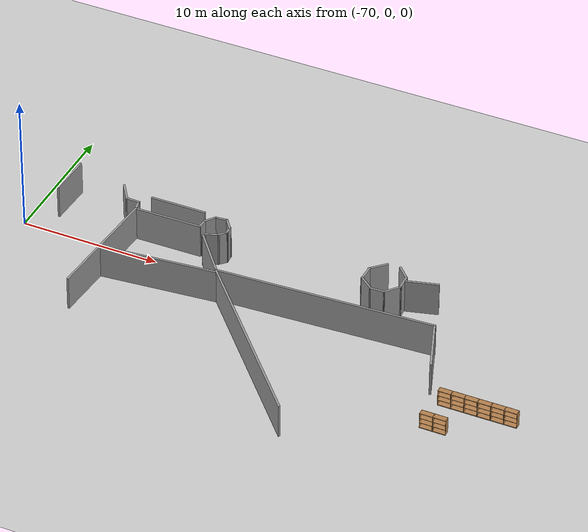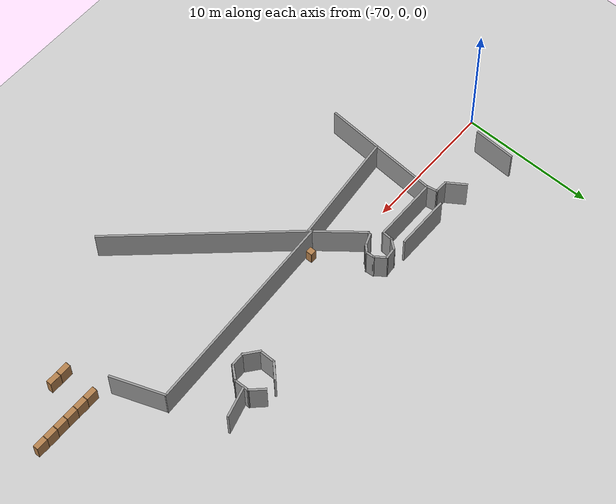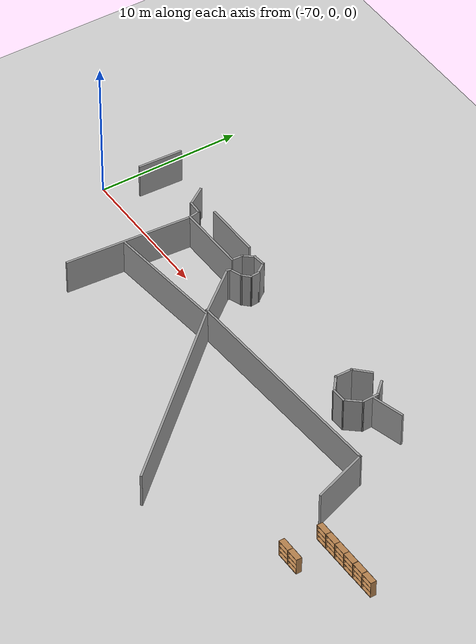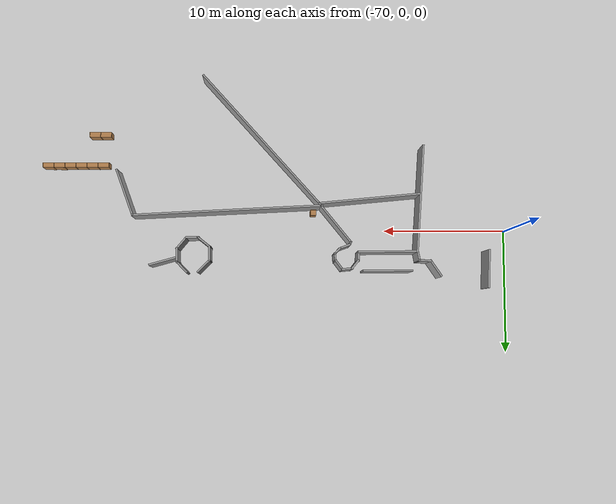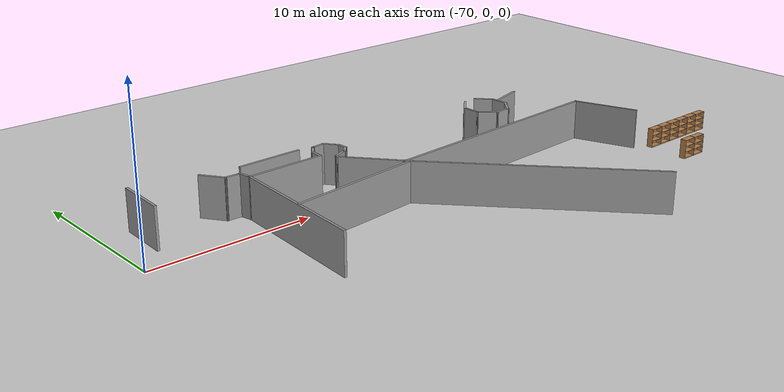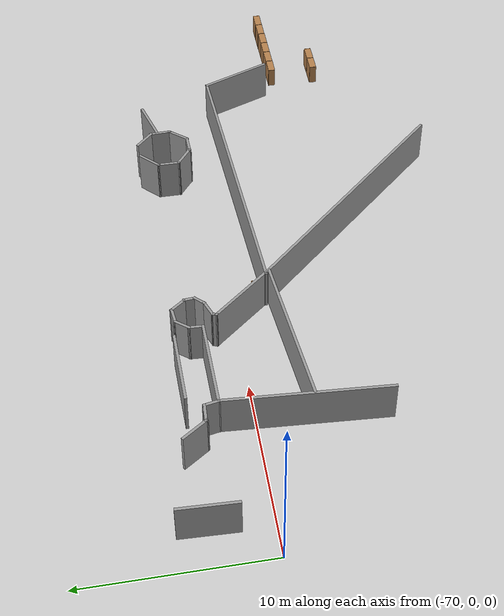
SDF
<sdf version="1.6">
 <world name="default">
  <model name="ground_plane">
   <static>1</static>
   <link name="link">
    <collision name="collision">
     <geometry><plane><normal>0 0 1</normal><size>100 100</size></plane></geometry>
     <surface><friction><ode><mu>100</mu><mu2>50</mu2></ode></friction></surface>
    </collision>
    <visual name="visual">
     <cast_shadows>0</cast_shadows>
     <geometry><plane><normal>0 0 1</normal><size>100 100</size></plane></geometry>
     <material>
      <script><uri>file://media/materials/scripts/gazebo.material</uri><name>Gazebo/Grey</name></script>
     </material>
    </visual>
   </link>
  </model>
  <model name="mall_new_reduce_size">
   <pose>-6.8092 7.5529 0 0 -0 0</pose>
   <link name="Wall_315">
    <collision name="Wall_315_Collision">
     <geometry><box><size>14.7593 0.15 2.5</size></box></geometry>
     <pose>0 0 1.25 0 -0 0</pose>
    </collision>
    <visual name="Wall_315_Visual">
     <pose>0 0 1.25 0 -0 0</pose>
     <geometry><box><size>14.7593 0.15 2.5</size></box></geometry>
     <material>
      <script><uri>file://media/materials/scripts/gazebo.material</uri><name>Gazebo/Grey</name></script>
      <ambient>1 1 1 1</ambient>
     </material>
     <meta><layer>0</layer></meta>
    </visual>
    <pose>-42.8797 -14.8029 0 0 -0 2.30518</pose>
   </link>
   <link name="Wall_316">
    <collision name="Wall_316_Collision">
     <geometry><box><size>15.666 0.15 2.5</size></box></geometry>
     <pose>0 0 1.25 0 -0 0</pose>
    </collision>
    <visual name="Wall_316_Visual">
     <pose>0 0 1.25 0 -0 0</pose>
     <geometry><box><size>15.666 0.15 2.5</size></box></geometry>
     <material>
      <script><uri>file://media/materials/scripts/gazebo.material</uri><name>Gazebo/Grey</name></script>
      <ambient>1 1 1 1</ambient>
     </material>
     <meta><layer>0</layer></meta>
    </visual>
    <pose>-40.0804 -8.94499 0 0 -0 0.056231</pose>
   </link>
   <link name="Wall_317">
    <collision name="Wall_317_Collision">
     <geometry><box><size>4.0797 0.15 2.5</size></box></geometry>
     <pose>0 0 1.25 0 -0 0</pose>
    </collision>
    <visual name="Wall_317_Visual">
     <pose>0 0 1.25 0 -0 0</pose>
     <geometry><box><size>4.0797 0.15 2.5</size></box></geometry>
     <material>
      <script><uri>file://media/materials/scripts/gazebo.material</uri><name>Gazebo/Grey</name></script>
      <ambient>1 1 1 1</ambient>
     </material>
     <meta><layer>0</layer></meta>
    </visual>
    <pose>-31.6512 -10.3768 0 0 -0 -1.21551</pose>
   </link>
   <link name="Wall_341">
    <collision name="Wall_341_Collision">
     <geometry><box><size>2.32014 0.15 2.5</size></box></geometry>
     <pose>0 0 1.25 0 -0 0</pose>
    </collision>
    <visual name="Wall_341_Visual">
     <pose>0 0 1.25 0 -0 0</pose>
     <geometry><box><size>2.32014 0.15 2.5</size></box></geometry>
     <material>
      <script><uri>file://media/materials/scripts/gazebo.material</uri><name>Gazebo/Grey</name></script>
      <ambient>1 1 1 1</ambient>
     </material>
     <meta><layer>0</layer></meta>
    </visual>
    <pose>-34.8895 -4.75363 0 0 -0 -2.86593</pose>
   </link>
   <link name="Wall_345">
    <collision name="Wall_345_Collision">
     <geometry><box><size>1.30987 0.15 2.5</size></box></geometry>
     <pose>0 0 1.25 0 -0 0</pose>
    </collision>
    <visual name="Wall_345_Visual">
     <pose>0 0 1.25 0 -0 0</pose>
     <geometry><box><size>1.30987 0.15 2.5</size></box></geometry>
     <material>
      <script><uri>file://media/materials/scripts/gazebo.material</uri><name>Gazebo/Grey</name></script>
      <ambient>1 1 1 1</ambient>
     </material>
     <meta><layer>0</layer></meta>
    </visual>
    <pose>-36.4425 -4.29785 0 0 -0 -0.805961</pose>
   </link>
   <link name="Wall_346">
    <collision name="Wall_346_Collision">
     <geometry><box><size>1.24209 0.15 2.5</size></box></geometry>
     <pose>0 0 1.25 0 -0 0</pose>
    </collision>
    <visual name="Wall_346_Visual">
     <pose>0 0 1.25 0 -0 0</pose>
     <geometry><box><size>1.24209 0.15 2.5</size></box></geometry>
     <material>
      <script><uri>file://media/materials/scripts/gazebo.material</uri><name>Gazebo/Grey</name></script>
      <ambient>1 1 1 1</ambient>
     </material>
     <meta><layer>0</layer></meta>
    </visual>
    <pose>-36.0325 -5.24519 0 0 -0 -1.53991</pose>
   </link>
   <link name="Wall_347">
    <collision name="Wall_347_Collision">
     <geometry><box><size>1.31923 0.15 2.5</size></box></geometry>
     <pose>0 0 1.25 0 -0 0</pose>
    </collision>
    <visual name="Wall_347_Visual">
     <pose>0 0 1.25 0 -0 0</pose>
     <geometry><box><size>1.31923 0.15 2.5</size></box></geometry>
     <material>
      <script><uri>file://media/materials/scripts/gazebo.material</uri><name>Gazebo/Grey</name></script>
      <ambient>1 1 1 1</ambient>
     </material>
     <meta><layer>0</layer></meta>
    </visual>
    <pose>-36.396 -6.24199 0 0 -0 -2.26043</pose>
   </link>
   <link name="Wall_348">
    <collision name="Wall_348_Collision">
     <geometry><box><size>1.10725 0.15 2.5</size></box></geometry>
     <pose>0 0 1.25 0 -0 0</pose>
    </collision>
    <visual name="Wall_348_Visual">
     <pose>0 0 1.25 0 -0 0</pose>
     <geometry><box><size>1.10725 0.15 2.5</size></box></geometry>
     <material>
      <script><uri>file://media/materials/scripts/gazebo.material</uri><name>Gazebo/Grey</name></script>
      <ambient>1 1 1 1</ambient>
     </material>
     <meta><layer>0</layer></meta>
    </visual>
    <pose>-37.2547 -6.70987 0 0 -0 -3.10635</pose>
   </link>
   <link name="Wall_349">
    <collision name="Wall_349_Collision">
     <geometry><box><size>1.3639 0.15 2.5</size></box></geometry>
     <pose>0 0 1.25 0 -0 0</pose>
    </collision>
    <visual name="Wall_349_Visual">
     <pose>0 0 1.25 0 -0 0</pose>
     <geometry><box><size>1.3639 0.15 2.5</size></box></geometry>
     <material>
      <script><uri>file://media/materials/scripts/gazebo.material</uri><name>Gazebo/Grey</name></script>
      <ambient>1 1 1 1</ambient>
     </material>
     <meta><layer>0</layer></meta>
    </visual>
    <pose>-38.2094 -6.34212 0 0 -0 2.47312</pose>
   </link>
   <link name="Wall_350">
    <collision name="Wall_350_Collision">
     <geometry><box><size>1.28376 0.15 2.5</size></box></geometry>
     <pose>0 0 1.25 0 -0 0</pose>
    </collision>
    <visual name="Wall_350_Visual">
     <pose>0 0 1.25 0 -0 0</pose>
     <geometry><box><size>1.28376 0.15 2.5</size></box></geometry>
     <material>
      <script><uri>file://media/materials/scripts/gazebo.material</uri><name>Gazebo/Grey</name></script>
      <ambient>1 1 1 1</ambient>
     </material>
     <meta><layer>0</layer></meta>
    </visual>
    <pose>-38.673 -5.39908 0 0 -0 1.56336</pose>
   </link>
   <link name="Wall_351">
    <collision name="Wall_351_Collision">
     <geometry><box><size>1.42952 0.15 2.5</size></box></geometry>
     <pose>0 0 1.25 0 -0 0</pose>
    </collision>
    <visual name="Wall_351_Visual">
     <pose>0 0 1.25 0 -0 0</pose>
     <geometry><box><size>1.42952 0.15 2.5</size></box></geometry>
     <material>
      <script><uri>file://media/materials/scripts/gazebo.material</uri><name>Gazebo/Grey</name></script>
      <ambient>1 1 1 1</ambient>
     </material>
     <meta><layer>0</layer></meta>
    </visual>
    <pose>-38.2264 -4.36991 0 0 -0 0.78871</pose>
   </link>
   <link name="Wall_401">
    <collision name="Wall_401_Collision">
     <geometry><box><size>8.88079 0.15 2.5</size></box></geometry>
     <pose>0 0 1.25 0 -0 0</pose>
    </collision>
    <visual name="Wall_401_Visual">
     <pose>0 0 1.25 0 -0 0</pose>
     <geometry><box><size>8.88079 0.15 2.5</size></box></geometry>
     <material>
      <script><uri>file://media/materials/scripts/gazebo.material</uri><name>Gazebo/Grey</name></script>
      <ambient>1 1 1 1</ambient>
     </material>
     <meta><layer>0</layer></meta>
    </visual>
    <pose>-55.8835 -10.0474 0 0 -0 1.50433</pose>
   </link>
   <link name="Wall_402">
    <collision name="Wall_402_Collision">
     <geometry><box><size>0.897348 0.15 2.5</size></box></geometry>
     <pose>0 0 1.25 0 -0 0</pose>
    </collision>
    <visual name="Wall_402_Visual">
     <pose>0 0 1.25 0 -0 0</pose>
     <geometry><box><size>0.897348 0.15 2.5</size></box></geometry>
     <material>
      <script><uri>file://media/materials/scripts/gazebo.material</uri><name>Gazebo/Grey</name></script>
      <ambient>1 1 1 1</ambient>
     </material>
     <meta><layer>0</layer></meta>
    </visual>
    <pose>-55.6756 -5.31366 0 0 -0 1.76181</pose>
   </link>
   <link name="Wall_403">
    <collision name="Wall_403_Collision">
     <geometry><box><size>1.05205 0.15 2.5</size></box></geometry>
     <pose>0 0 1.25 0 -0 0</pose>
    </collision>
    <visual name="Wall_403_Visual">
     <pose>0 0 1.25 0 -0 0</pose>
     <geometry><box><size>1.05205 0.15 2.5</size></box></geometry>
     <material>
      <script><uri>file://media/materials/scripts/gazebo.material</uri><name>Gazebo/Grey</name></script>
      <ambient>1 1 1 1</ambient>
     </material>
     <meta><layer>0</layer></meta>
    </visual>
    <pose>-56.1975 -4.94175 0 0 -0 3.09776</pose>
   </link>
   <link name="Wall_404">
    <collision name="Wall_404_Collision">
     <geometry><box><size>1.6486 0.15 2.5</size></box></geometry>
     <pose>0 0 1.25 0 -0 0</pose>
    </collision>
    <visual name="Wall_404_Visual">
     <pose>0 0 1.25 0 -0 0</pose>
     <geometry><box><size>1.6486 0.15 2.5</size></box></geometry>
     <material>
      <script><uri>file://media/materials/scripts/gazebo.material</uri><name>Gazebo/Grey</name></script>
      <ambient>1 1 1 1</ambient>
     </material>
     <meta><layer>0</layer></meta>
    </visual>
    <pose>-57.0705 -4.31764 0 0 -0 2.16924</pose>
   </link>
   <link name="Wall_411">
    <collision name="Wall_411_Collision">
     <geometry><box><size>4.04883 0.15 2.5</size></box></geometry>
     <pose>0 0 1.25 0 -0 0</pose>
    </collision>
    <visual name="Wall_411_Visual">
     <pose>0 0 1.25 0 -0 0</pose>
     <geometry><box><size>4.04883 0.15 2.5</size></box></geometry>
     <material>
      <script><uri>file://media/materials/scripts/gazebo.material</uri><name>Gazebo/Grey</name></script>
      <ambient>1 1 1 1</ambient>
     </material>
     <meta><layer>0</layer></meta>
    </visual>
    <pose>-53.1806 -4.10085 0 0 -0 0.010101</pose>
   </link>
   <link name="Wall_427">
    <collision name="Wall_427_Collision">
     <geometry><box><size>3.12833 0.15 2.5</size></box></geometry>
     <pose>0 0 1.25 0 -0 0</pose>
    </collision>
    <visual name="Wall_427_Visual">
     <pose>0 0 1.25 0 -0 0</pose>
     <geometry><box><size>3.12833 0.15 2.5</size></box></geometry>
     <material>
      <script><uri>file://media/materials/scripts/gazebo.material</uri><name>Gazebo/Grey</name></script>
      <ambient>1 1 1 1</ambient>
     </material>
     <meta><layer>0</layer></meta>
    </visual>
    <pose>-61.3717 -4.31042 0 0 -0 1.53172</pose>
   </link>
   <link name="Wall_434">
    <collision name="Wall_434_Collision">
     <geometry><box><size>8.39063 0.15 2.5</size></box></geometry>
     <pose>0 0 1.25 0 -0 0</pose>
    </collision>
    <visual name="Wall_434_Visual">
     <pose>0 0 1.25 0 -0 0</pose>
     <geometry><box><size>8.39063 0.15 2.5</size></box></geometry>
     <material>
      <script><uri>file://media/materials/scripts/gazebo.material</uri><name>Gazebo/Grey</name></script>
      <ambient>1 1 1 1</ambient>
     </material>
     <meta><layer>0</layer></meta>
    </visual>
    <pose>-51.7356 -9.99206 0 0 -0 0.100443</pose>
   </link>
   <link name="Wall_437">
    <collision name="Wall_437_Collision">
     <geometry><box><size>4.93367 0.15 2.5</size></box></geometry>
     <pose>0 0 1.25 0 -0 0</pose>
    </collision>
    <visual name="Wall_437_Visual">
     <pose>0 0 1.25 0 -0 0</pose>
     <geometry><box><size>4.93367 0.15 2.5</size></box></geometry>
     <material>
      <script><uri>file://media/materials/scripts/gazebo.material</uri><name>Gazebo/Grey</name></script>
      <ambient>1 1 1 1</ambient>
     </material>
     <meta><layer>0</layer></meta>
    </visual>
    <pose>-53.2131 -5.64679 0 0 -0 0.01411</pose>
   </link>
   <link name="Wall_438">
    <collision name="Wall_438_Collision">
     <geometry><box><size>0.856294 0.15 2.5</size></box></geometry>
     <pose>0 0 1.25 0 -0 0</pose>
    </collision>
    <visual name="Wall_438_Visual">
     <pose>0 0 1.25 0 -0 0</pose>
     <geometry><box><size>0.856294 0.15 2.5</size></box></geometry>
     <material>
      <script><uri>file://media/materials/scripts/gazebo.material</uri><name>Gazebo/Grey</name></script>
      <ambient>1 1 1 1</ambient>
     </material>
     <meta><layer>0</layer></meta>
    </visual>
    <pose>-50.8031 -5.24109 0 0 -0 1.51867</pose>
   </link>
   <link name="Wall_439">
    <collision name="Wall_439_Collision">
     <geometry><box><size>0.969231 0.15 2.5</size></box></geometry>
     <pose>0 0 1.25 0 -0 0</pose>
    </collision>
    <visual name="Wall_439_Visual">
     <pose>0 0 1.25 0 -0 0</pose>
     <geometry><box><size>0.969231 0.15 2.5</size></box></geometry>
     <material>
      <script><uri>file://media/materials/scripts/gazebo.material</uri><name>Gazebo/Grey</name></script>
      <ambient>1 1 1 1</ambient>
     </material>
     <meta><layer>0</layer></meta>
    </visual>
    <pose>-50.5308 -4.57665 0 0 -0 0.902175</pose>
   </link>
   <link name="Wall_440">
    <collision name="Wall_440_Collision">
     <geometry><box><size>0.946307 0.15 2.5</size></box></geometry>
     <pose>0 0 1.25 0 -0 0</pose>
    </collision>
    <visual name="Wall_440_Visual">
     <pose>0 0 1.25 0 -0 0</pose>
     <geometry><box><size>0.946307 0.15 2.5</size></box></geometry>
     <material>
      <script><uri>file://media/materials/scripts/gazebo.material</uri><name>Gazebo/Grey</name></script>
      <ambient>1 1 1 1</ambient>
     </material>
     <meta><layer>0</layer></meta>
    </visual>
    <pose>-49.8906 -4.222 0 0 -0 0.1079</pose>
   </link>
   <link name="Wall_441">
    <collision name="Wall_441_Collision">
     <geometry><box><size>1.05702 0.15 2.5</size></box></geometry>
     <pose>0 0 1.25 0 -0 0</pose>
    </collision>
    <visual name="Wall_441_Visual">
     <pose>0 0 1.25 0 -0 0</pose>
     <geometry><box><size>1.05702 0.15 2.5</size></box></geometry>
     <material>
      <script><uri>file://media/materials/scripts/gazebo.material</uri><name>Gazebo/Grey</name></script>
      <ambient>1 1 1 1</ambient>
     </material>
     <meta><layer>0</layer></meta>
    </visual>
    <pose>-49.2136 -4.53268 0 0 -0 -0.928706</pose>
   </link>
   <link name="Wall_442">
    <collision name="Wall_442_Collision">
     <geometry><box><size>0.712069 0.15 2.5</size></box></geometry>
     <pose>0 0 1.25 0 -0 0</pose>
    </collision>
    <visual name="Wall_442_Visual">
     <pose>0 0 1.25 0 -0 0</pose>
     <geometry><box><size>0.712069 0.15 2.5</size></box></geometry>
     <material>
      <script><uri>file://media/materials/scripts/gazebo.material</uri><name>Gazebo/Grey</name></script>
      <ambient>1 1 1 1</ambient>
     </material>
     <meta><layer>0</layer></meta>
    </visual>
    <pose>-48.9034 -5.1666 0 0 -0 -1.50212</pose>
   </link>
   <link name="Wall_443">
    <collision name="Wall_443_Collision">
     <geometry><box><size>0.745598 0.15 2.5</size></box></geometry>
     <pose>0 0 1.25 0 -0 0</pose>
    </collision>
    <visual name="Wall_443_Visual">
     <pose>0 0 1.25 0 -0 0</pose>
     <geometry><box><size>0.745598 0.15 2.5</size></box></geometry>
     <material>
      <script><uri>file://media/materials/scripts/gazebo.material</uri><name>Gazebo/Grey</name></script>
      <ambient>1 1 1 1</ambient>
     </material>
     <meta><layer>0</layer></meta>
    </visual>
    <pose>-49.0898 -5.67195 0 0 -0 -2.3333</pose>
   </link>
   <link name="Wall_444">
    <collision name="Wall_444_Collision">
     <geometry><box><size>1.0299 0.15 2.5</size></box></geometry>
     <pose>0 0 1.25 0 -0 0</pose>
    </collision>
    <visual name="Wall_444_Visual">
     <pose>0 0 1.25 0 -0 0</pose>
     <geometry><box><size>1.0299 0.15 2.5</size></box></geometry>
     <material>
      <script><uri>file://media/materials/scripts/gazebo.material</uri><name>Gazebo/Grey</name></script>
      <ambient>1 1 1 1</ambient>
     </material>
     <meta><layer>0</layer></meta>
    </visual>
    <pose>-49.6964 -6.0455 0 0 -0 -2.77375</pose>
   </link>
   <link name="Wall_445">
    <collision name="Wall_445_Collision">
     <geometry><box><size>0.341024 0.15 2.5</size></box></geometry>
     <pose>0 0 1.25 0 -0 0</pose>
    </collision>
    <visual name="Wall_445_Visual">
     <pose>0 0 1.25 0 -0 0</pose>
     <geometry><box><size>0.341024 0.15 2.5</size></box></geometry>
     <material>
      <script><uri>file://media/materials/scripts/gazebo.material</uri><name>Gazebo/Grey</name></script>
      <ambient>1 1 1 1</ambient>
     </material>
     <meta><layer>0</layer></meta>
    </visual>
    <pose>-50.1426 -6.30525 0 0 -0 -1.8466</pose>
   </link>
   <link name="Wall_446">
    <collision name="Wall_446_Collision">
     <geometry><box><size>3.93279 0.15 2.5</size></box></geometry>
     <pose>0 0 1.25 0 -0 0</pose>
    </collision>
    <visual name="Wall_446_Visual">
     <pose>0 0 1.25 0 -0 0</pose>
     <geometry><box><size>3.93279 0.15 2.5</size></box></geometry>
     <material>
      <script><uri>file://media/materials/scripts/gazebo.material</uri><name>Gazebo/Grey</name></script>
      <ambient>1 1 1 1</ambient>
     </material>
     <meta><layer>0</layer></meta>
    </visual>
    <pose>-48.9826 -7.86273 0 0 -0 -0.886501</pose>
   </link>
   <static>1</static>
  </model>
  <model name="bookshelf_6">
   <static>1</static>
   <link name="link">
    <inertial><mass>1</mass></inertial>
    <collision name="back">
     <pose>0 0.005 0.6 0 -0 0</pose>
     <geometry><box><size>0.9 0.01 1.2</size></box></geometry>
    </collision>
    <visual name="visual1">
     <pose>0 0.005 0.6 0 -0 0</pose>
     <geometry><box><size>0.9 0.01 1.2</size></box></geometry>
     <material>
      <script><uri>file://media/materials/scripts/gazebo.material</uri><name>Gazebo/Wood</name></script>
     </material>
    </visual>
    <collision name="left_side">
     <pose>0.45 -0.195 0.6 0 -0 0</pose>
     <geometry><box><size>0.02 0.4 1.2</size></box></geometry>
    </collision>
    <visual name="visual2">
     <pose>0.45 -0.195 0.6 0 -0 0</pose>
     <geometry><box><size>0.02 0.4 1.2</size></box></geometry>
     <material>
      <script><uri>file://media/materials/scripts/gazebo.material</uri><name>Gazebo/Wood</name></script>
     </material>
    </visual>
    <collision name="right_side">
     <pose>-0.45 -0.195 0.6 0 -0 0</pose>
     <geometry><box><size>0.02 0.4 1.2</size></box></geometry>
    </collision>
    <visual name="visual3">
     <pose>-0.45 -0.195 0.6 0 -0 0</pose>
     <geometry><box><size>0.02 0.4 1.2</size></box></geometry>
     <material>
      <script><uri>file://media/materials/scripts/gazebo.material</uri><name>Gazebo/Wood</name></script>
     </material>
    </visual>
    <collision name="bottom">
     <pose>0 -0.195 0.03 0 -0 0</pose>
     <geometry><box><size>0.88 0.4 0.06</size></box></geometry>
    </collision>
    <visual name="visual4">
     <pose>0 -0.195 0.03 0 -0 0</pose>
     <geometry><box><size>0.88 0.4 0.06</size></box></geometry>
     <material>
      <script><uri>file://media/materials/scripts/gazebo.material</uri><name>Gazebo/Wood</name></script>
     </material>
    </visual>
    <collision name="top">
     <pose>0 -0.195 1.19 0 -0 0</pose>
     <geometry><box><size>0.88 0.4 0.02</size></box></geometry>
    </collision>
    <visual name="visual5">
     <pose>0 -0.195 1.19 0 -0 0</pose>
     <geometry><box><size>0.88 0.4 0.02</size></box></geometry>
     <material>
      <script><uri>file://media/materials/scripts/gazebo.material</uri><name>Gazebo/Wood</name></script>
     </material>
    </visual>
    <collision name="low_shelf">
     <pose>0 -0.195 0.43 0 -0 0</pose>
     <geometry><box><size>0.88 0.4 0.02</size></box></geometry>
    </collision>
    <visual name="visual6">
     <pose>0 -0.195 0.43 0 -0 0</pose>
     <geometry><box><size>0.88 0.4 0.02</size></box></geometry>
     <material>
      <script><uri>file://media/materials/scripts/gazebo.material</uri><name>Gazebo/Wood</name></script>
     </material>
    </visual>
    <collision name="high_shelf">
     <pose>0 -0.195 0.8 0 -0 0</pose>
     <geometry><box><size>0.88 0.4 0.02</size></box></geometry>
    </collision>
    <visual name="visual7">
     <pose>0 -0.195 0.8 0 -0 0</pose>
     <geometry><box><size>0.88 0.4 0.02</size></box></geometry>
     <material>
      <script><uri>file://media/materials/scripts/gazebo.material</uri><name>Gazebo/Wood</name></script>
     </material>
    </visual>
   </link>
   <pose>-35.6618 -7.6805 0 0 -0 0</pose>
  </model>
  <model name="cabinet_3">
   <static>1</static>
   <link name="cabinet_bottom_plate">
    <inertial>
     <pose>0 0 -1 0 -0 0</pose>
     <inertia><ixx>2.05</ixx><ixy>0</ixy><ixz>0</ixz><iyy>2.05</iyy><iyz>0</iyz><izz>2.05</izz></inertia>
     <mass>25</mass>
    </inertial>
    <collision name="cabinet_bottom_plate_geom">
     <pose>0 0 0.01 0 -0 0</pose>
     <geometry><box><size>0.45 0.45 0.02</size></box></geometry>
    </collision>
    <visual name="cabinet_bottom_plate_geom_visual">
     <pose>0 0 0.01 0 -0 0</pose>
     <geometry><box><size>0.45 0.45 0.02</size></box></geometry>
     <material>
      <script><uri>file://media/materials/scripts/gazebo.material</uri><name>Gazebo/Wood</name></script>
     </material>
    </visual>
    <collision name="cabinet_bottom_plate_geom_cabinet_back_plate">
     <pose>0.235 0 0.51 0 -0 0</pose>
     <geometry><box><size>0.02 0.45 1.02</size></box></geometry>
    </collision>
    <visual name="cabinet_bottom_plate_geom_cabinet_back_plate_visual">
     <pose>0.235 0 0.51 0 -0 0</pose>
     <geometry><box><size>0.02 0.45 1.02</size></box></geometry>
     <material>
      <script><uri>file://media/materials/scripts/gazebo.material</uri><name>Gazebo/Wood</name></script>
     </material>
    </visual>
    <collision name="cabinet_bottom_plate_geom_cabinet_left_plate">
     <pose>0 0.235 0.51 0 -0 0</pose>
     <geometry><box><size>0.45 0.02 1.02</size></box></geometry>
    </collision>
    <visual name="cabinet_bottom_plate_geom_cabinet_left_plate_visual">
     <pose>0 0.235 0.51 0 -0 0</pose>
     <geometry><box><size>0.45 0.02 1.02</size></box></geometry>
     <material>
      <script><uri>file://media/materials/scripts/gazebo.material</uri><name>Gazebo/Wood</name></script>
     </material>
    </visual>
    <collision name="cabinet_bottom_plate_geom_cabinet_middle_plate">
     <pose>0 0 0.51 0 -0 0</pose>
     <geometry><box><size>0.45 0.45 0.02</size></box></geometry>
    </collision>
    <visual name="cabinet_bottom_plate_geom_cabinet_middle_plate_visual">
     <pose>0 0 0.51 0 -0 0</pose>
     <geometry><box><size>0.45 0.45 0.02</size></box></geometry>
     <material>
      <script><uri>file://media/materials/scripts/gazebo.material</uri><name>Gazebo/Wood</name></script>
     </material>
    </visual>
    <collision name="cabinet_bottom_plate_geom_cabinet_right_plate">
     <pose>0 -0.235 0.51 0 -0 0</pose>
     <geometry><box><size>0.45 0.02 1.02</size></box></geometry>
    </collision>
    <visual name="cabinet_bottom_plate_geom_cabinet_right_plate_visual">
     <pose>0 -0.235 0.51 0 -0 0</pose>
     <geometry><box><size>0.45 0.02 1.02</size></box></geometry>
     <material>
      <script><uri>file://media/materials/scripts/gazebo.material</uri><name>Gazebo/Wood</name></script>
     </material>
    </visual>
    <collision name="cabinet_bottom_plate_geom_cabinet_top_plate">
     <pose>0 0 1.01 0 -0 0</pose>
     <geometry><box><size>0.45 0.45 0.02</size></box></geometry>
    </collision>
    <visual name="cabinet_bottom_plate_geom_cabinet_top_plate_visual">
     <pose>0 0 1.01 0 -0 0</pose>
     <geometry><box><size>0.45 0.45 0.02</size></box></geometry>
     <material>
      <script><uri>file://media/materials/scripts/gazebo.material</uri><name>Gazebo/Wood</name></script>
     </material>
    </visual>
   </link>
   <pose>-53.9926 -1.41288 0 0 -0 0</pose>
  </model>
  <model name="bookshelf_15">
   <static>1</static>
   <link name="link">
    <inertial><mass>1</mass></inertial>
    <collision name="back">
     <pose>0 0.005 0.6 0 -0 0</pose>
     <geometry><box><size>0.9 0.01 1.2</size></box></geometry>
    </collision>
    <visual name="visual1">
     <pose>0 0.005 0.6 0 -0 0</pose>
     <geometry><box><size>0.9 0.01 1.2</size></box></geometry>
     <material>
      <script><uri>file://media/materials/scripts/gazebo.material</uri><name>Gazebo/Wood</name></script>
     </material>
    </visual>
    <collision name="left_side">
     <pose>0.45 -0.195 0.6 0 -0 0</pose>
     <geometry><box><size>0.02 0.4 1.2</size></box></geometry>
    </collision>
    <visual name="visual2">
     <pose>0.45 -0.195 0.6 0 -0 0</pose>
     <geometry><box><size>0.02 0.4 1.2</size></box></geometry>
     <material>
      <script><uri>file://media/materials/scripts/gazebo.material</uri><name>Gazebo/Wood</name></script>
     </material>
    </visual>
    <collision name="right_side">
     <pose>-0.45 -0.195 0.6 0 -0 0</pose>
     <geometry><box><size>0.02 0.4 1.2</size></box></geometry>
    </collision>
    <visual name="visual3">
     <pose>-0.45 -0.195 0.6 0 -0 0</pose>
     <geometry><box><size>0.02 0.4 1.2</size></box></geometry>
     <material>
      <script><uri>file://media/materials/scripts/gazebo.material</uri><name>Gazebo/Wood</name></script>
     </material>
    </visual>
    <collision name="bottom">
     <pose>0 -0.195 0.03 0 -0 0</pose>
     <geometry><box><size>0.88 0.4 0.06</size></box></geometry>
    </collision>
    <visual name="visual4">
     <pose>0 -0.195 0.03 0 -0 0</pose>
     <geometry><box><size>0.88 0.4 0.06</size></box></geometry>
     <material>
      <script><uri>file://media/materials/scripts/gazebo.material</uri><name>Gazebo/Wood</name></script>
     </material>
    </visual>
    <collision name="top">
     <pose>0 -0.195 1.19 0 -0 0</pose>
     <geometry><box><size>0.88 0.4 0.02</size></box></geometry>
    </collision>
    <visual name="visual5">
     <pose>0 -0.195 1.19 0 -0 0</pose>
     <geometry><box><size>0.88 0.4 0.02</size></box></geometry>
     <material>
      <script><uri>file://media/materials/scripts/gazebo.material</uri><name>Gazebo/Wood</name></script>
     </material>
    </visual>
    <collision name="low_shelf">
     <pose>0 -0.195 0.43 0 -0 0</pose>
     <geometry><box><size>0.88 0.4 0.02</size></box></geometry>
    </collision>
    <visual name="visual6">
     <pose>0 -0.195 0.43 0 -0 0</pose>
     <geometry><box><size>0.88 0.4 0.02</size></box></geometry>
     <material>
      <script><uri>file://media/materials/scripts/gazebo.material</uri><name>Gazebo/Wood</name></script>
     </material>
    </visual>
    <collision name="high_shelf">
     <pose>0 -0.195 0.8 0 -0 0</pose>
     <geometry><box><size>0.88 0.4 0.02</size></box></geometry>
    </collision>
    <visual name="visual7">
     <pose>0 -0.195 0.8 0 -0 0</pose>
     <geometry><box><size>0.88 0.4 0.02</size></box></geometry>
     <material>
      <script><uri>file://media/materials/scripts/gazebo.material</uri><name>Gazebo/Wood</name></script>
     </material>
    </visual>
   </link>
   <pose>-36.5861 -7.68185 0 0 -0 0</pose>
  </model>
  <model name="bookshelf_16">
   <static>1</static>
   <link name="link">
    <inertial><mass>1</mass></inertial>
    <collision name="back">
     <pose>0 0.005 0.6 0 -0 0</pose>
     <geometry><box><size>0.9 0.01 1.2</size></box></geometry>
    </collision>
    <visual name="visual1">
     <pose>0 0.005 0.6 0 -0 0</pose>
     <geometry><box><size>0.9 0.01 1.2</size></box></geometry>
     <material>
      <script><uri>file://media/materials/scripts/gazebo.material</uri><name>Gazebo/Wood</name></script>
     </material>
    </visual>
    <collision name="left_side">
     <pose>0.45 -0.195 0.6 0 -0 0</pose>
     <geometry><box><size>0.02 0.4 1.2</size></box></geometry>
    </collision>
    <visual name="visual2">
     <pose>0.45 -0.195 0.6 0 -0 0</pose>
     <geometry><box><size>0.02 0.4 1.2</size></box></geometry>
     <material>
      <script><uri>file://media/materials/scripts/gazebo.material</uri><name>Gazebo/Wood</name></script>
     </material>
    </visual>
    <collision name="right_side">
     <pose>-0.45 -0.195 0.6 0 -0 0</pose>
     <geometry><box><size>0.02 0.4 1.2</size></box></geometry>
    </collision>
    <visual name="visual3">
     <pose>-0.45 -0.195 0.6 0 -0 0</pose>
     <geometry><box><size>0.02 0.4 1.2</size></box></geometry>
     <material>
      <script><uri>file://media/materials/scripts/gazebo.material</uri><name>Gazebo/Wood</name></script>
     </material>
    </visual>
    <collision name="bottom">
     <pose>0 -0.195 0.03 0 -0 0</pose>
     <geometry><box><size>0.88 0.4 0.06</size></box></geometry>
    </collision>
    <visual name="visual4">
     <pose>0 -0.195 0.03 0 -0 0</pose>
     <geometry><box><size>0.88 0.4 0.06</size></box></geometry>
     <material>
      <script><uri>file://media/materials/scripts/gazebo.material</uri><name>Gazebo/Wood</name></script>
     </material>
    </visual>
    <collision name="top">
     <pose>0 -0.195 1.19 0 -0 0</pose>
     <geometry><box><size>0.88 0.4 0.02</size></box></geometry>
    </collision>
    <visual name="visual5">
     <pose>0 -0.195 1.19 0 -0 0</pose>
     <geometry><box><size>0.88 0.4 0.02</size></box></geometry>
     <material>
      <script><uri>file://media/materials/scripts/gazebo.material</uri><name>Gazebo/Wood</name></script>
     </material>
    </visual>
    <collision name="low_shelf">
     <pose>0 -0.195 0.43 0 -0 0</pose>
     <geometry><box><size>0.88 0.4 0.02</size></box></geometry>
    </collision>
    <visual name="visual6">
     <pose>0 -0.195 0.43 0 -0 0</pose>
     <geometry><box><size>0.88 0.4 0.02</size></box></geometry>
     <material>
      <script><uri>file://media/materials/scripts/gazebo.material</uri><name>Gazebo/Wood</name></script>
     </material>
    </visual>
    <collision name="high_shelf">
     <pose>0 -0.195 0.8 0 -0 0</pose>
     <geometry><box><size>0.88 0.4 0.02</size></box></geometry>
    </collision>
    <visual name="visual7">
     <pose>0 -0.195 0.8 0 -0 0</pose>
     <geometry><box><size>0.88 0.4 0.02</size></box></geometry>
     <material>
      <script><uri>file://media/materials/scripts/gazebo.material</uri><name>Gazebo/Wood</name></script>
     </material>
    </visual>
   </link>
   <pose>-36.4435 -5.11097 0 0 -0 0</pose>
  </model>
  <model name="bookshelf_17">
   <static>1</static>
   <link name="link">
    <inertial><mass>1</mass></inertial>
    <collision name="back">
     <pose>0 0.005 0.6 0 -0 0</pose>
     <geometry><box><size>0.9 0.01 1.2</size></box></geometry>
    </collision>
    <visual name="visual1">
     <pose>0 0.005 0.6 0 -0 0</pose>
     <geometry><box><size>0.9 0.01 1.2</size></box></geometry>
     <material>
      <script><uri>file://media/materials/scripts/gazebo.material</uri><name>Gazebo/Wood</name></script>
     </material>
    </visual>
    <collision name="left_side">
     <pose>0.45 -0.195 0.6 0 -0 0</pose>
     <geometry><box><size>0.02 0.4 1.2</size></box></geometry>
    </collision>
    <visual name="visual2">
     <pose>0.45 -0.195 0.6 0 -0 0</pose>
     <geometry><box><size>0.02 0.4 1.2</size></box></geometry>
     <material>
      <script><uri>file://media/materials/scripts/gazebo.material</uri><name>Gazebo/Wood</name></script>
     </material>
    </visual>
    <collision name="right_side">
     <pose>-0.45 -0.195 0.6 0 -0 0</pose>
     <geometry><box><size>0.02 0.4 1.2</size></box></geometry>
    </collision>
    <visual name="visual3">
     <pose>-0.45 -0.195 0.6 0 -0 0</pose>
     <geometry><box><size>0.02 0.4 1.2</size></box></geometry>
     <material>
      <script><uri>file://media/materials/scripts/gazebo.material</uri><name>Gazebo/Wood</name></script>
     </material>
    </visual>
    <collision name="bottom">
     <pose>0 -0.195 0.03 0 -0 0</pose>
     <geometry><box><size>0.88 0.4 0.06</size></box></geometry>
    </collision>
    <visual name="visual4">
     <pose>0 -0.195 0.03 0 -0 0</pose>
     <geometry><box><size>0.88 0.4 0.06</size></box></geometry>
     <material>
      <script><uri>file://media/materials/scripts/gazebo.material</uri><name>Gazebo/Wood</name></script>
     </material>
    </visual>
    <collision name="top">
     <pose>0 -0.195 1.19 0 -0 0</pose>
     <geometry><box><size>0.88 0.4 0.02</size></box></geometry>
    </collision>
    <visual name="visual5">
     <pose>0 -0.195 1.19 0 -0 0</pose>
     <geometry><box><size>0.88 0.4 0.02</size></box></geometry>
     <material>
      <script><uri>file://media/materials/scripts/gazebo.material</uri><name>Gazebo/Wood</name></script>
     </material>
    </visual>
    <collision name="low_shelf">
     <pose>0 -0.195 0.43 0 -0 0</pose>
     <geometry><box><size>0.88 0.4 0.02</size></box></geometry>
    </collision>
    <visual name="visual6">
     <pose>0 -0.195 0.43 0 -0 0</pose>
     <geometry><box><size>0.88 0.4 0.02</size></box></geometry>
     <material>
      <script><uri>file://media/materials/scripts/gazebo.material</uri><name>Gazebo/Wood</name></script>
     </material>
    </visual>
    <collision name="high_shelf">
     <pose>0 -0.195 0.8 0 -0 0</pose>
     <geometry><box><size>0.88 0.4 0.02</size></box></geometry>
    </collision>
    <visual name="visual7">
     <pose>0 -0.195 0.8 0 -0 0</pose>
     <geometry><box><size>0.88 0.4 0.02</size></box></geometry>
     <material>
      <script><uri>file://media/materials/scripts/gazebo.material</uri><name>Gazebo/Wood</name></script>
     </material>
    </visual>
   </link>
   <pose>-35.5179 -5.10147 0 0 -0 0</pose>
  </model>
  <model name="bookshelf_18">
   <static>1</static>
   <link name="link">
    <inertial><mass>1</mass></inertial>
    <collision name="back">
     <pose>0 0.005 0.6 0 -0 0</pose>
     <geometry><box><size>0.9 0.01 1.2</size></box></geometry>
    </collision>
    <visual name="visual1">
     <pose>0 0.005 0.6 0 -0 0</pose>
     <geometry><box><size>0.9 0.01 1.2</size></box></geometry>
     <material>
      <script><uri>file://media/materials/scripts/gazebo.material</uri><name>Gazebo/Wood</name></script>
     </material>
    </visual>
    <collision name="left_side">
     <pose>0.45 -0.195 0.6 0 -0 0</pose>
     <geometry><box><size>0.02 0.4 1.2</size></box></geometry>
    </collision>
    <visual name="visual2">
     <pose>0.45 -0.195 0.6 0 -0 0</pose>
     <geometry><box><size>0.02 0.4 1.2</size></box></geometry>
     <material>
      <script><uri>file://media/materials/scripts/gazebo.material</uri><name>Gazebo/Wood</name></script>
     </material>
    </visual>
    <collision name="right_side">
     <pose>-0.45 -0.195 0.6 0 -0 0</pose>
     <geometry><box><size>0.02 0.4 1.2</size></box></geometry>
    </collision>
    <visual name="visual3">
     <pose>-0.45 -0.195 0.6 0 -0 0</pose>
     <geometry><box><size>0.02 0.4 1.2</size></box></geometry>
     <material>
      <script><uri>file://media/materials/scripts/gazebo.material</uri><name>Gazebo/Wood</name></script>
     </material>
    </visual>
    <collision name="bottom">
     <pose>0 -0.195 0.03 0 -0 0</pose>
     <geometry><box><size>0.88 0.4 0.06</size></box></geometry>
    </collision>
    <visual name="visual4">
     <pose>0 -0.195 0.03 0 -0 0</pose>
     <geometry><box><size>0.88 0.4 0.06</size></box></geometry>
     <material>
      <script><uri>file://media/materials/scripts/gazebo.material</uri><name>Gazebo/Wood</name></script>
     </material>
    </visual>
    <collision name="top">
     <pose>0 -0.195 1.19 0 -0 0</pose>
     <geometry><box><size>0.88 0.4 0.02</size></box></geometry>
    </collision>
    <visual name="visual5">
     <pose>0 -0.195 1.19 0 -0 0</pose>
     <geometry><box><size>0.88 0.4 0.02</size></box></geometry>
     <material>
      <script><uri>file://media/materials/scripts/gazebo.material</uri><name>Gazebo/Wood</name></script>
     </material>
    </visual>
    <collision name="low_shelf">
     <pose>0 -0.195 0.43 0 -0 0</pose>
     <geometry><box><size>0.88 0.4 0.02</size></box></geometry>
    </collision>
    <visual name="visual6">
     <pose>0 -0.195 0.43 0 -0 0</pose>
     <geometry><box><size>0.88 0.4 0.02</size></box></geometry>
     <material>
      <script><uri>file://media/materials/scripts/gazebo.material</uri><name>Gazebo/Wood</name></script>
     </material>
    </visual>
    <collision name="high_shelf">
     <pose>0 -0.195 0.8 0 -0 0</pose>
     <geometry><box><size>0.88 0.4 0.02</size></box></geometry>
    </collision>
    <visual name="visual7">
     <pose>0 -0.195 0.8 0 -0 0</pose>
     <geometry><box><size>0.88 0.4 0.02</size></box></geometry>
     <material>
      <script><uri>file://media/materials/scripts/gazebo.material</uri><name>Gazebo/Wood</name></script>
     </material>
    </visual>
   </link>
   <pose>-34.5964 -5.09775 0 0 -0 0</pose>
  </model>
  <model name="bookshelf_19">
   <static>1</static>
   <link name="link">
    <inertial><mass>1</mass></inertial>
    <collision name="back">
     <pose>0 0.005 0.6 0 -0 0</pose>
     <geometry><box><size>0.9 0.01 1.2</size></box></geometry>
    </collision>
    <visual name="visual1">
     <pose>0 0.005 0.6 0 -0 0</pose>
     <geometry><box><size>0.9 0.01 1.2</size></box></geometry>
     <material>
      <script><uri>file://media/materials/scripts/gazebo.material</uri><name>Gazebo/Wood</name></script>
     </material>
    </visual>
    <collision name="left_side">
     <pose>0.45 -0.195 0.6 0 -0 0</pose>
     <geometry><box><size>0.02 0.4 1.2</size></box></geometry>
    </collision>
    <visual name="visual2">
     <pose>0.45 -0.195 0.6 0 -0 0</pose>
     <geometry><box><size>0.02 0.4 1.2</size></box></geometry>
     <material>
      <script><uri>file://media/materials/scripts/gazebo.material</uri><name>Gazebo/Wood</name></script>
     </material>
    </visual>
    <collision name="right_side">
     <pose>-0.45 -0.195 0.6 0 -0 0</pose>
     <geometry><box><size>0.02 0.4 1.2</size></box></geometry>
    </collision>
    <visual name="visual3">
     <pose>-0.45 -0.195 0.6 0 -0 0</pose>
     <geometry><box><size>0.02 0.4 1.2</size></box></geometry>
     <material>
      <script><uri>file://media/materials/scripts/gazebo.material</uri><name>Gazebo/Wood</name></script>
     </material>
    </visual>
    <collision name="bottom">
     <pose>0 -0.195 0.03 0 -0 0</pose>
     <geometry><box><size>0.88 0.4 0.06</size></box></geometry>
    </collision>
    <visual name="visual4">
     <pose>0 -0.195 0.03 0 -0 0</pose>
     <geometry><box><size>0.88 0.4 0.06</size></box></geometry>
     <material>
      <script><uri>file://media/materials/scripts/gazebo.material</uri><name>Gazebo/Wood</name></script>
     </material>
    </visual>
    <collision name="top">
     <pose>0 -0.195 1.19 0 -0 0</pose>
     <geometry><box><size>0.88 0.4 0.02</size></box></geometry>
    </collision>
    <visual name="visual5">
     <pose>0 -0.195 1.19 0 -0 0</pose>
     <geometry><box><size>0.88 0.4 0.02</size></box></geometry>
     <material>
      <script><uri>file://media/materials/scripts/gazebo.material</uri><name>Gazebo/Wood</name></script>
     </material>
    </visual>
    <collision name="low_shelf">
     <pose>0 -0.195 0.43 0 -0 0</pose>
     <geometry><box><size>0.88 0.4 0.02</size></box></geometry>
    </collision>
    <visual name="visual6">
     <pose>0 -0.195 0.43 0 -0 0</pose>
     <geometry><box><size>0.88 0.4 0.02</size></box></geometry>
     <material>
      <script><uri>file://media/materials/scripts/gazebo.material</uri><name>Gazebo/Wood</name></script>
     </material>
    </visual>
    <collision name="high_shelf">
     <pose>0 -0.195 0.8 0 -0 0</pose>
     <geometry><box><size>0.88 0.4 0.02</size></box></geometry>
    </collision>
    <visual name="visual7">
     <pose>0 -0.195 0.8 0 -0 0</pose>
     <geometry><box><size>0.88 0.4 0.02</size></box></geometry>
     <material>
      <script><uri>file://media/materials/scripts/gazebo.material</uri><name>Gazebo/Wood</name></script>
     </material>
    </visual>
   </link>
   <pose>-33.6717 -5.09385 0 0 -0 0</pose>
  </model>
  <model name="bookshelf_20">
   <static>1</static>
   <link name="link">
    <inertial><mass>1</mass></inertial>
    <collision name="back">
     <pose>0 0.005 0.6 0 -0 0</pose>
     <geometry><box><size>0.9 0.01 1.2</size></box></geometry>
    </collision>
    <visual name="visual1">
     <pose>0 0.005 0.6 0 -0 0</pose>
     <geometry><box><size>0.9 0.01 1.2</size></box></geometry>
     <material>
      <script><uri>file://media/materials/scripts/gazebo.material</uri><name>Gazebo/Wood</name></script>
     </material>
    </visual>
    <collision name="left_side">
     <pose>0.45 -0.195 0.6 0 -0 0</pose>
     <geometry><box><size>0.02 0.4 1.2</size></box></geometry>
    </collision>
    <visual name="visual2">
     <pose>0.45 -0.195 0.6 0 -0 0</pose>
     <geometry><box><size>0.02 0.4 1.2</size></box></geometry>
     <material>
      <script><uri>file://media/materials/scripts/gazebo.material</uri><name>Gazebo/Wood</name></script>
     </material>
    </visual>
    <collision name="right_side">
     <pose>-0.45 -0.195 0.6 0 -0 0</pose>
     <geometry><box><size>0.02 0.4 1.2</size></box></geometry>
    </collision>
    <visual name="visual3">
     <pose>-0.45 -0.195 0.6 0 -0 0</pose>
     <geometry><box><size>0.02 0.4 1.2</size></box></geometry>
     <material>
      <script><uri>file://media/materials/scripts/gazebo.material</uri><name>Gazebo/Wood</name></script>
     </material>
    </visual>
    <collision name="bottom">
     <pose>0 -0.195 0.03 0 -0 0</pose>
     <geometry><box><size>0.88 0.4 0.06</size></box></geometry>
    </collision>
    <visual name="visual4">
     <pose>0 -0.195 0.03 0 -0 0</pose>
     <geometry><box><size>0.88 0.4 0.06</size></box></geometry>
     <material>
      <script><uri>file://media/materials/scripts/gazebo.material</uri><name>Gazebo/Wood</name></script>
     </material>
    </visual>
    <collision name="top">
     <pose>0 -0.195 1.19 0 -0 0</pose>
     <geometry><box><size>0.88 0.4 0.02</size></box></geometry>
    </collision>
    <visual name="visual5">
     <pose>0 -0.195 1.19 0 -0 0</pose>
     <geometry><box><size>0.88 0.4 0.02</size></box></geometry>
     <material>
      <script><uri>file://media/materials/scripts/gazebo.material</uri><name>Gazebo/Wood</name></script>
     </material>
    </visual>
    <collision name="low_shelf">
     <pose>0 -0.195 0.43 0 -0 0</pose>
     <geometry><box><size>0.88 0.4 0.02</size></box></geometry>
    </collision>
    <visual name="visual6">
     <pose>0 -0.195 0.43 0 -0 0</pose>
     <geometry><box><size>0.88 0.4 0.02</size></box></geometry>
     <material>
      <script><uri>file://media/materials/scripts/gazebo.material</uri><name>Gazebo/Wood</name></script>
     </material>
    </visual>
    <collision name="high_shelf">
     <pose>0 -0.195 0.8 0 -0 0</pose>
     <geometry><box><size>0.88 0.4 0.02</size></box></geometry>
    </collision>
    <visual name="visual7">
     <pose>0 -0.195 0.8 0 -0 0</pose>
     <geometry><box><size>0.88 0.4 0.02</size></box></geometry>
     <material>
      <script><uri>file://media/materials/scripts/gazebo.material</uri><name>Gazebo/Wood</name></script>
     </material>
    </visual>
   </link>
   <pose>-32.7438 -5.08026 0 0 -0 0</pose>
  </model>
  <model name="bookshelf_21">
   <static>1</static>
   <link name="link">
    <inertial><mass>1</mass></inertial>
    <collision name="back">
     <pose>0 0.005 0.6 0 -0 0</pose>
     <geometry><box><size>0.9 0.01 1.2</size></box></geometry>
    </collision>
    <visual name="visual1">
     <pose>0 0.005 0.6 0 -0 0</pose>
     <geometry><box><size>0.9 0.01 1.2</size></box></geometry>
     <material>
      <script><uri>file://media/materials/scripts/gazebo.material</uri><name>Gazebo/Wood</name></script>
     </material>
    </visual>
    <collision name="left_side">
     <pose>0.45 -0.195 0.6 0 -0 0</pose>
     <geometry><box><size>0.02 0.4 1.2</size></box></geometry>
    </collision>
    <visual name="visual2">
     <pose>0.45 -0.195 0.6 0 -0 0</pose>
     <geometry><box><size>0.02 0.4 1.2</size></box></geometry>
     <material>
      <script><uri>file://media/materials/scripts/gazebo.material</uri><name>Gazebo/Wood</name></script>
     </material>
    </visual>
    <collision name="right_side">
     <pose>-0.45 -0.195 0.6 0 -0 0</pose>
     <geometry><box><size>0.02 0.4 1.2</size></box></geometry>
    </collision>
    <visual name="visual3">
     <pose>-0.45 -0.195 0.6 0 -0 0</pose>
     <geometry><box><size>0.02 0.4 1.2</size></box></geometry>
     <material>
      <script><uri>file://media/materials/scripts/gazebo.material</uri><name>Gazebo/Wood</name></script>
     </material>
    </visual>
    <collision name="bottom">
     <pose>0 -0.195 0.03 0 -0 0</pose>
     <geometry><box><size>0.88 0.4 0.06</size></box></geometry>
    </collision>
    <visual name="visual4">
     <pose>0 -0.195 0.03 0 -0 0</pose>
     <geometry><box><size>0.88 0.4 0.06</size></box></geometry>
     <material>
      <script><uri>file://media/materials/scripts/gazebo.material</uri><name>Gazebo/Wood</name></script>
     </material>
    </visual>
    <collision name="top">
     <pose>0 -0.195 1.19 0 -0 0</pose>
     <geometry><box><size>0.88 0.4 0.02</size></box></geometry>
    </collision>
    <visual name="visual5">
     <pose>0 -0.195 1.19 0 -0 0</pose>
     <geometry><box><size>0.88 0.4 0.02</size></box></geometry>
     <material>
      <script><uri>file://media/materials/scripts/gazebo.material</uri><name>Gazebo/Wood</name></script>
     </material>
    </visual>
    <collision name="low_shelf">
     <pose>0 -0.195 0.43 0 -0 0</pose>
     <geometry><box><size>0.88 0.4 0.02</size></box></geometry>
    </collision>
    <visual name="visual6">
     <pose>0 -0.195 0.43 0 -0 0</pose>
     <geometry><box><size>0.88 0.4 0.02</size></box></geometry>
     <material>
      <script><uri>file://media/materials/scripts/gazebo.material</uri><name>Gazebo/Wood</name></script>
     </material>
    </visual>
    <collision name="high_shelf">
     <pose>0 -0.195 0.8 0 -0 0</pose>
     <geometry><box><size>0.88 0.4 0.02</size></box></geometry>
    </collision>
    <visual name="visual7">
     <pose>0 -0.195 0.8 0 -0 0</pose>
     <geometry><box><size>0.88 0.4 0.02</size></box></geometry>
     <material>
      <script><uri>file://media/materials/scripts/gazebo.material</uri><name>Gazebo/Wood</name></script>
     </material>
    </visual>
   </link>
   <pose>-31.8239 -5.07609 0 0 -0 0</pose>
  </model>
 </world>
</sdf>
